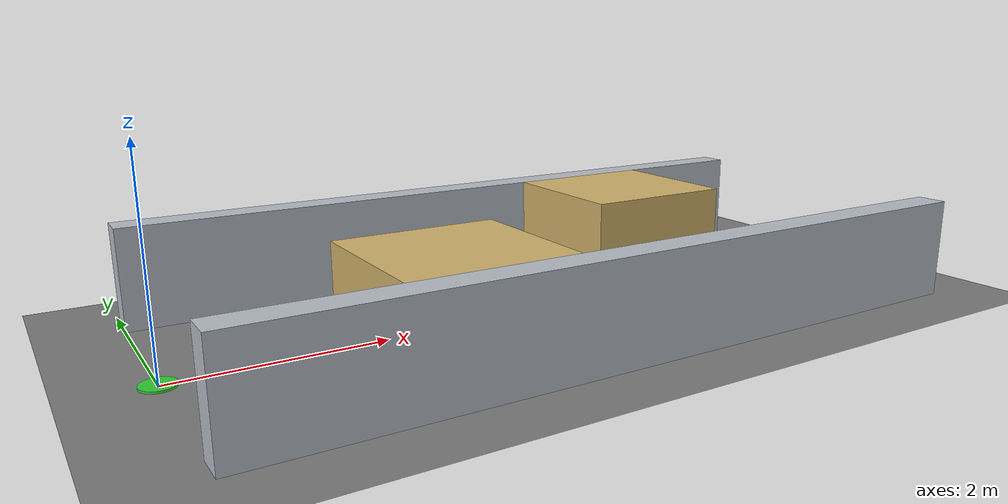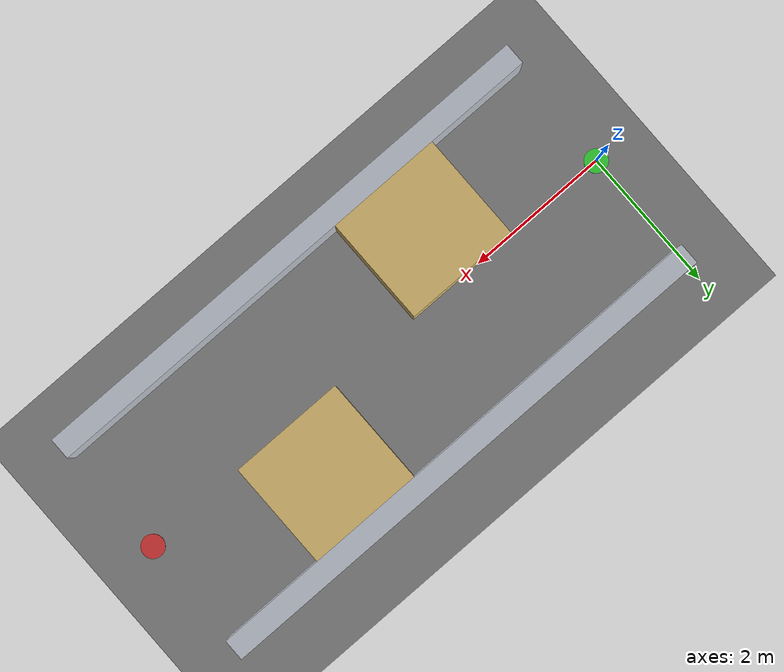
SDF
<?xml version="1.0"?>
<sdf version="1.8">
  <world name="baseline_moderate_curvature_narrow">
    <physics name="1ms" type="ignored">
      <max_step_size>0.001</max_step_size>
      <real_time_factor>1.0</real_time_factor>
    </physics>
    <plugin filename="gz-sim-physics-system" name="gz::sim::systems::Physics"/>
    <plugin filename="gz-sim-sensors-system" name="gz::sim::systems::Sensors">
      <render_engine>ogre2</render_engine>
    </plugin>
    <plugin filename="gz-sim-user-commands-system" name="gz::sim::systems::UserCommands"/>
    <plugin filename="gz-sim-scene-broadcaster-system" name="gz::sim::systems::SceneBroadcaster"/>

    <gravity>0 0 -9.81</gravity>

    <light name="sun" type="directional">
      <cast_shadows>true</cast_shadows>
      <pose>0 0 10 0 0 0</pose>
      <diffuse>0.8 0.8 0.8 1</diffuse>
      <specular>0.2 0.2 0.2 1</specular>
      <attenuation>
        <range>1000</range>
        <constant>0.9</constant>
        <linear>0.01</linear>
        <quadratic>0.001</quadratic>
      </attenuation>
      <direction>-0.5 0.1 -0.9</direction>
    </light>

    <model name="ground_plane">
      <static>true</static>
      <link name="link">
        <collision name="collision"><geometry><plane><normal>0 0 1</normal><size>100 100</size></plane></geometry></collision>
        <visual name="visual"><geometry><plane><normal>0 0 1</normal><size>100 100</size></plane></geometry><material><ambient>0.48 0.48 0.48 1</ambient><diffuse>0.48 0.48 0.48 1</diffuse></material></visual>
      </link>
    </model>

    <!-- Outer corridor walls: clear width 3.0m (y = -1.5 to +1.5) -->
    <model name="top_boundary">
      <static>true</static>
      <pose>3.75 1.65 0.5 0 0 0</pose>
      <link name="link">
        <collision name="collision"><geometry><box><size>7.5 0.3 1.0</size></box></geometry></collision>
        <visual name="visual"><geometry><box><size>7.5 0.3 1.0</size></box></geometry><material><ambient>0.72 0.74 0.78 1</ambient><diffuse>0.72 0.74 0.78 1</diffuse></material></visual>
      </link>
    </model>

    <model name="bottom_boundary">
      <static>true</static>
      <pose>3.75 -1.65 0.5 0 0 0</pose>
      <link name="link">
        <collision name="collision"><geometry><box><size>7.5 0.3 1.0</size></box></geometry></collision>
        <visual name="visual"><geometry><box><size>7.5 0.3 1.0</size></box></geometry><material><ambient>0.72 0.74 0.78 1</ambient><diffuse>0.72 0.74 0.78 1</diffuse></material></visual>
      </link>
    </model>

    <!-- First diverter: blocks lower half, leaves 1.5m above (y: -1.5→0) -->
    <model name="first_diverter">
      <static>true</static>
      <pose>2.3 -0.75 0.5 0 0 0</pose>
      <link name="link">
        <collision name="collision"><geometry><box><size>1.6 1.5 1.0</size></box></geometry></collision>
        <visual name="visual"><geometry><box><size>1.6 1.5 1.0</size></box></geometry><material><ambient>0.82 0.70 0.42 1</ambient><diffuse>0.82 0.70 0.42 1</diffuse></material></visual>
      </link>
    </model>

    <!-- Second diverter: blocks upper half, leaves 1.5m below (y: 0→1.5) -->
    <model name="second_diverter">
      <static>true</static>
      <pose>5.2 0.75 0.5 0 0 0</pose>
      <link name="link">
        <collision name="collision"><geometry><box><size>1.6 1.5 1.0</size></box></geometry></collision>
        <visual name="visual"><geometry><box><size>1.6 1.5 1.0</size></box></geometry><material><ambient>0.82 0.70 0.42 1</ambient><diffuse>0.82 0.70 0.42 1</diffuse></material></visual>
      </link>
    </model>

    <model name="start_marker">
      <static>true</static>
      <pose>0.0 0.0 0.01 0 0 0</pose>
      <link name="link">
        <visual name="visual"><geometry><cylinder><radius>0.16</radius><length>0.02</length></cylinder></geometry><material><ambient>0.2 0.8 0.2 1</ambient><diffuse>0.2 0.8 0.2 1</diffuse></material></visual>
      </link>
    </model>

    <model name="goal_marker">
      <static>true</static>
      <pose>7.5 0.0 0.01 0 0 0</pose>
      <link name="link">
        <visual name="visual"><geometry><cylinder><radius>0.16</radius><length>0.02</length></cylinder></geometry><material><ambient>0.8 0.2 0.2 1</ambient><diffuse>0.8 0.2 0.2 1</diffuse></material></visual>
      </link>
    </model>
  </world>
</sdf>
